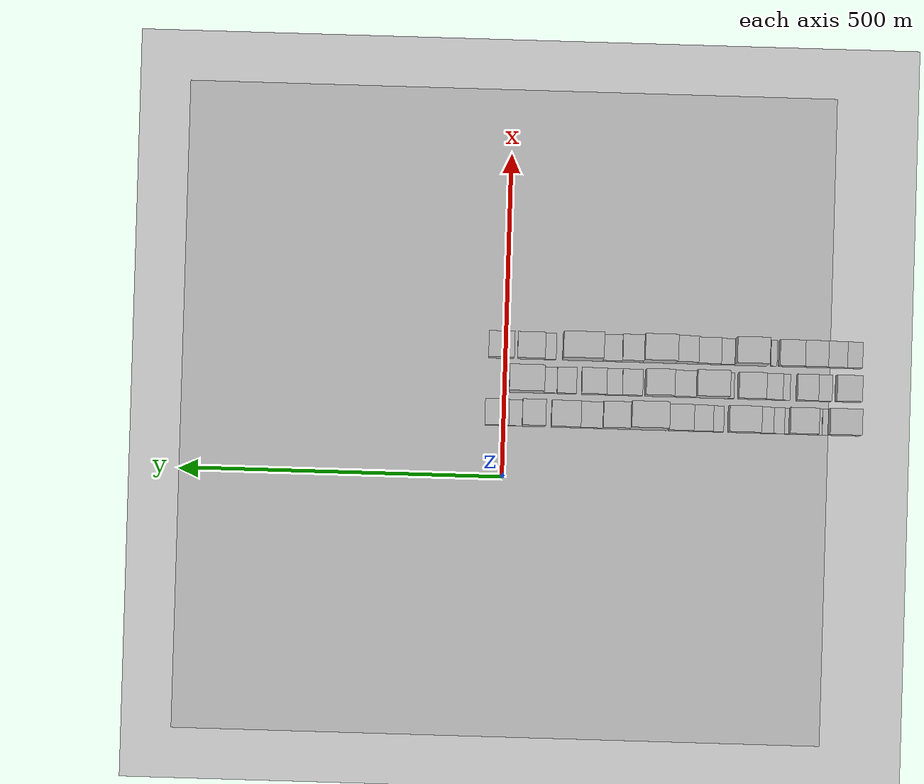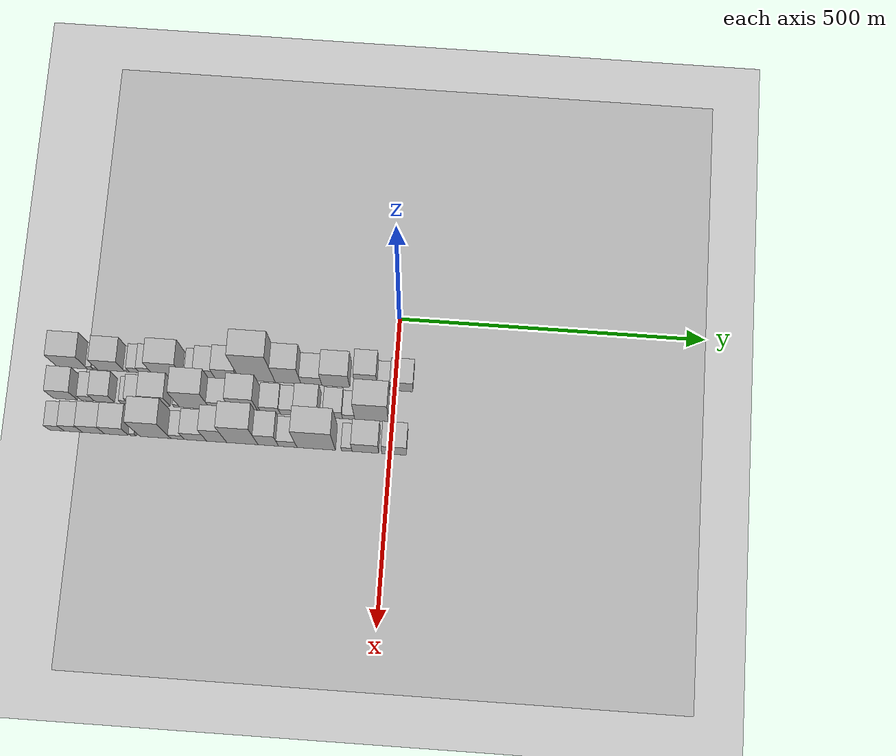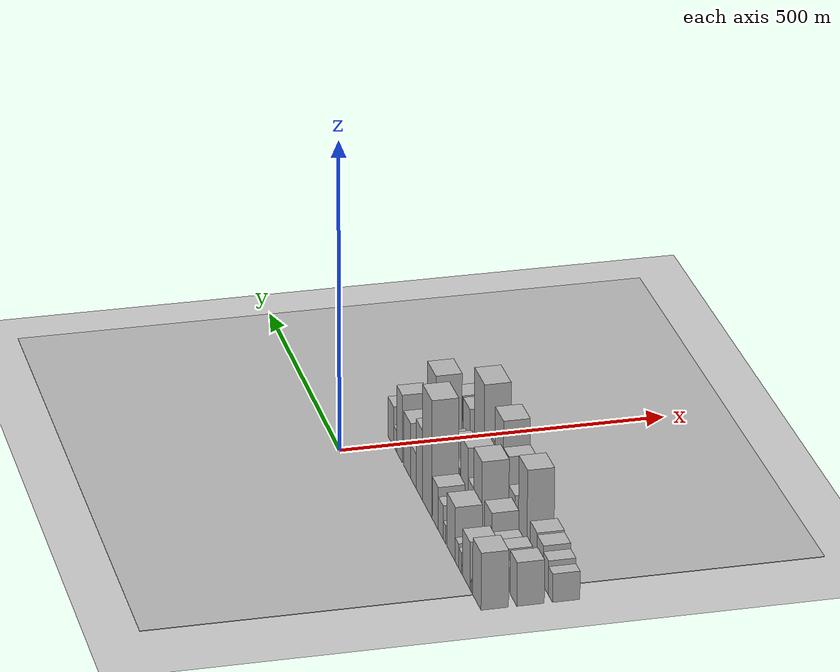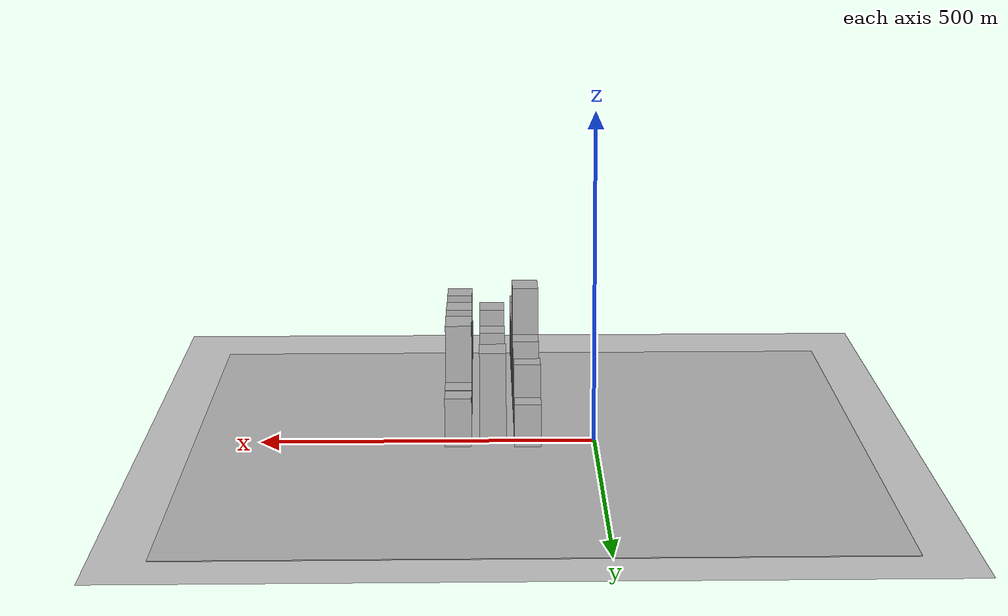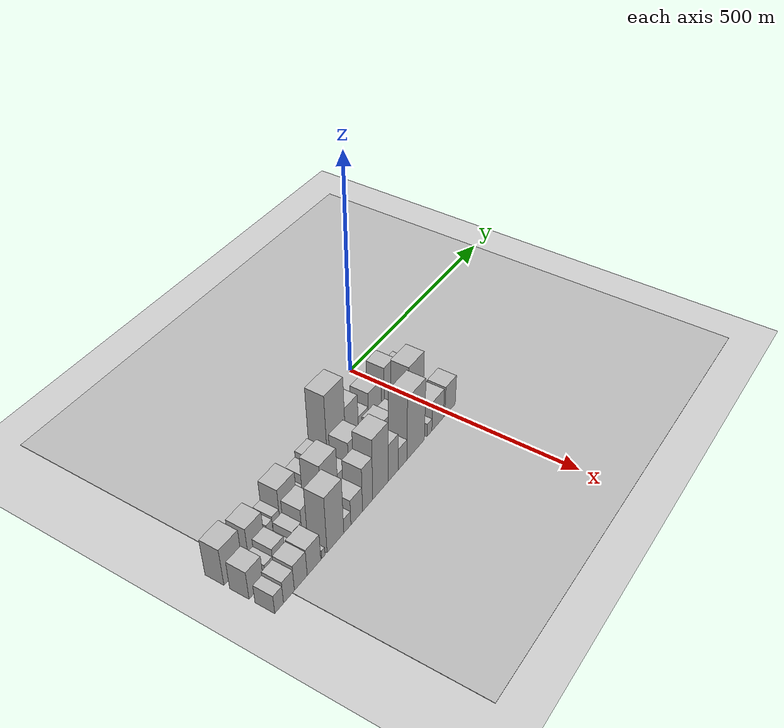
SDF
<sdf version="1.6">
 <world name="default">
  <include><name>ground_plane_1</name><uri>model://HANNAS_ground_plane</uri></include>
  <include>
   <name>ground_plane_2</name>
   <uri>model://HANNAS_ground_plane</uri>
   <pose>100 0 0  0 0 0</pose>
  </include>
  <model name="building_1">
   <static>1</static>
   <pose>100.0000 -523.3896 0 0.000000 0.000000 0.000000</pose>
   <link name="link">
    <pose>0 0 45.00 0 0 0</pose>
    <collision name="collision"><geometry><box><size>40.0000 49.2209 90.0000</size></box></geometry></collision>
    <visual name="visual">
     <cast_shadows>0</cast_shadows>
     <geometry><box><size>40.0000 49.2209 90.0000</size></box></geometry>
     <material>
      <script>
       <uri>model://HANNAS_wall/materials/scripts</uri>
       <uri>model://HANNAS_wall/materials/textures</uri>
       <name>vrc/HANNAS_wall</name>
      </script>
     </material>
    </visual>
   </link>
  </model>
  <model name="building_2">
   <static>1</static>
   <pose>100.0000 -494.3995 0 0.000000 0.000000 0.000000</pose>
   <link name="link">
    <pose>0 0 10.50 0 0 0</pose>
    <collision name="collision"><geometry><box><size>40.0000 8.7592 21.0000</size></box></geometry></collision>
    <visual name="visual">
     <cast_shadows>0</cast_shadows>
     <geometry><box><size>40.0000 8.7592 21.0000</size></box></geometry>
     <material>
      <script>
       <uri>model://HANNAS_wall/materials/scripts</uri>
       <uri>model://HANNAS_wall/materials/textures</uri>
       <name>vrc/HANNAS_wall</name>
      </script>
     </material>
    </visual>
   </link>
  </model>
  <model name="building_3">
   <static>1</static>
   <pose>100.0000 -486.4066 0 0.000000 0.000000 0.000000</pose>
   <link name="link">
    <pose>0 0 7.50 0 0 0</pose>
    <collision name="collision"><geometry><box><size>40.0000 7.2267 15.0000</size></box></geometry></collision>
    <visual name="visual">
     <cast_shadows>0</cast_shadows>
     <geometry><box><size>40.0000 7.2267 15.0000</size></box></geometry>
     <material>
      <script>
       <uri>model://HANNAS_wall/materials/scripts</uri>
       <uri>model://HANNAS_wall/materials/textures</uri>
       <name>vrc/HANNAS_wall</name>
      </script>
     </material>
    </visual>
   </link>
  </model>
  <model name="building_4">
   <static>1</static>
   <pose>100.0000 -460.7162 0 0.000000 0.000000 0.000000</pose>
   <link name="link">
    <pose>0 0 37.50 0 0 0</pose>
    <collision name="collision"><geometry><box><size>40.0000 44.1541 75.0000</size></box></geometry></collision>
    <visual name="visual">
     <cast_shadows>0</cast_shadows>
     <geometry><box><size>40.0000 44.1541 75.0000</size></box></geometry>
     <material>
      <script>
       <uri>model://HANNAS_wall/materials/scripts</uri>
       <uri>model://HANNAS_wall/materials/textures</uri>
       <name>vrc/HANNAS_wall</name>
      </script>
     </material>
    </visual>
   </link>
  </model>
  <model name="building_5">
   <static>1</static>
   <pose>100.0000 -434.9563 0 0.000000 0.000000 0.000000</pose>
   <link name="link">
    <pose>0 0 7.50 0 0 0</pose>
    <collision name="collision"><geometry><box><size>40.0000 7.3657 15.0000</size></box></geometry></collision>
    <visual name="visual">
     <cast_shadows>0</cast_shadows>
     <geometry><box><size>40.0000 7.3657 15.0000</size></box></geometry>
     <material>
      <script>
       <uri>model://HANNAS_wall/materials/scripts</uri>
       <uri>model://HANNAS_wall/materials/textures</uri>
       <name>vrc/HANNAS_wall</name>
      </script>
     </material>
    </visual>
   </link>
  </model>
  <model name="building_6">
   <static>1</static>
   <pose>100.0000 -422.9179 0 0.000000 0.000000 0.000000</pose>
   <link name="link">
    <pose>0 0 16.50 0 0 0</pose>
    <collision name="collision"><geometry><box><size>40.0000 16.7111 33.0000</size></box></geometry></collision>
    <visual name="visual">
     <cast_shadows>0</cast_shadows>
     <geometry><box><size>40.0000 16.7111 33.0000</size></box></geometry>
     <material>
      <script>
       <uri>model://HANNAS_wall/materials/scripts</uri>
       <uri>model://HANNAS_wall/materials/textures</uri>
       <name>vrc/HANNAS_wall</name>
      </script>
     </material>
    </visual>
   </link>
  </model>
  <model name="building_7">
   <static>1</static>
   <pose>100.0000 -404.4449 0 0.000000 0.000000 0.000000</pose>
   <link name="link">
    <pose>0 0 19.50 0 0 0</pose>
    <collision name="collision"><geometry><box><size>40.0000 20.2349 39.0000</size></box></geometry></collision>
    <visual name="visual">
     <cast_shadows>0</cast_shadows>
     <geometry><box><size>40.0000 20.2349 39.0000</size></box></geometry>
     <material>
      <script>
       <uri>model://HANNAS_wall/materials/scripts</uri>
       <uri>model://HANNAS_wall/materials/textures</uri>
       <name>vrc/HANNAS_wall</name>
      </script>
     </material>
    </visual>
   </link>
  </model>
  <model name="building_8">
   <static>1</static>
   <pose>100.0000 -369.5859 0 0.000000 0.000000 0.000000</pose>
   <link name="link">
    <pose>0 0 43.50 0 0 0</pose>
    <collision name="collision"><geometry><box><size>40.0000 49.4830 87.0000</size></box></geometry></collision>
    <visual name="visual">
     <cast_shadows>0</cast_shadows>
     <geometry><box><size>40.0000 49.4830 87.0000</size></box></geometry>
     <material>
      <script>
       <uri>model://HANNAS_wall/materials/scripts</uri>
       <uri>model://HANNAS_wall/materials/textures</uri>
       <name>vrc/HANNAS_wall</name>
      </script>
     </material>
    </visual>
   </link>
  </model>
  <model name="building_9">
   <static>1</static>
   <pose>100.0000 -329.4801 0 0.000000 0.000000 0.000000</pose>
   <link name="link">
    <pose>0 0 15.00 0 0 0</pose>
    <collision name="collision"><geometry><box><size>40.0000 16.7286 30.0000</size></box></geometry></collision>
    <visual name="visual">
     <cast_shadows>0</cast_shadows>
     <geometry><box><size>40.0000 16.7286 30.0000</size></box></geometry>
     <material>
      <script>
       <uri>model://HANNAS_wall/materials/scripts</uri>
       <uri>model://HANNAS_wall/materials/textures</uri>
       <name>vrc/HANNAS_wall</name>
      </script>
     </material>
    </visual>
   </link>
  </model>
  <model name="building_10">
   <static>1</static>
   <pose>100.0000 -306.1747 0 0.000000 0.000000 0.000000</pose>
   <link name="link">
    <pose>0 0 27.00 0 0 0</pose>
    <collision name="collision"><geometry><box><size>40.0000 29.8823 54.0000</size></box></geometry></collision>
    <visual name="visual">
     <cast_shadows>0</cast_shadows>
     <geometry><box><size>40.0000 29.8823 54.0000</size></box></geometry>
     <material>
      <script>
       <uri>model://HANNAS_wall/materials/scripts</uri>
       <uri>model://HANNAS_wall/materials/textures</uri>
       <name>vrc/HANNAS_wall</name>
      </script>
     </material>
    </visual>
   </link>
  </model>
  <model name="building_11">
   <static>1</static>
   <pose>100.0000 -272.3612 0 0.000000 0.000000 0.000000</pose>
   <link name="link">
    <pose>0 0 34.50 0 0 0</pose>
    <collision name="collision"><geometry><box><size>40.0000 37.7446 69.0000</size></box></geometry></collision>
    <visual name="visual">
     <cast_shadows>0</cast_shadows>
     <geometry><box><size>40.0000 37.7446 69.0000</size></box></geometry>
     <material>
      <script>
       <uri>model://HANNAS_wall/materials/scripts</uri>
       <uri>model://HANNAS_wall/materials/textures</uri>
       <name>vrc/HANNAS_wall</name>
      </script>
     </material>
    </visual>
   </link>
  </model>
  <model name="building_12">
   <static>1</static>
   <pose>100.0000 -221.8321 0 0.000000 0.000000 0.000000</pose>
   <link name="link">
    <pose>0 0 94.50 0 0 0</pose>
    <collision name="collision"><geometry><box><size>40.0000 57.3137 189.0000</size></box></geometry></collision>
    <visual name="visual">
     <cast_shadows>0</cast_shadows>
     <geometry><box><size>40.0000 57.3137 189.0000</size></box></geometry>
     <material>
      <script>
       <uri>model://HANNAS_wall/materials/scripts</uri>
       <uri>model://HANNAS_wall/materials/textures</uri>
       <name>vrc/HANNAS_wall</name>
      </script>
     </material>
    </visual>
   </link>
  </model>
  <model name="building_13">
   <static>1</static>
   <pose>100.0000 -172.2524 0 0.000000 0.000000 0.000000</pose>
   <link name="link">
    <pose>0 0 57.00 0 0 0</pose>
    <collision name="collision"><geometry><box><size>40.0000 41.8458 114.0000</size></box></geometry></collision>
    <visual name="visual">
     <cast_shadows>0</cast_shadows>
     <geometry><box><size>40.0000 41.8458 114.0000</size></box></geometry>
     <material>
      <script>
       <uri>model://HANNAS_wall/materials/scripts</uri>
       <uri>model://HANNAS_wall/materials/textures</uri>
       <name>vrc/HANNAS_wall</name>
      </script>
     </material>
    </visual>
   </link>
  </model>
  <model name="building_14">
   <static>1</static>
   <pose>100.0000 -134.3879 0 0.000000 0.000000 0.000000</pose>
   <link name="link">
    <pose>0 0 28.50 0 0 0</pose>
    <collision name="collision"><geometry><box><size>40.0000 33.8833 57.0000</size></box></geometry></collision>
    <visual name="visual">
     <cast_shadows>0</cast_shadows>
     <geometry><box><size>40.0000 33.8833 57.0000</size></box></geometry>
     <material>
      <script>
       <uri>model://HANNAS_wall/materials/scripts</uri>
       <uri>model://HANNAS_wall/materials/textures</uri>
       <name>vrc/HANNAS_wall</name>
      </script>
     </material>
    </visual>
   </link>
  </model>
  <model name="building_15">
   <static>1</static>
   <pose>100.0000 -94.8387 0 0.000000 0.000000 0.000000</pose>
   <link name="link">
    <pose>0 0 45.00 0 0 0</pose>
    <collision name="collision"><geometry><box><size>40.0000 45.2150 90.0000</size></box></geometry></collision>
    <visual name="visual">
     <cast_shadows>0</cast_shadows>
     <geometry><box><size>40.0000 45.2150 90.0000</size></box></geometry>
     <material>
      <script>
       <uri>model://HANNAS_wall/materials/scripts</uri>
       <uri>model://HANNAS_wall/materials/textures</uri>
       <name>vrc/HANNAS_wall</name>
      </script>
     </material>
    </visual>
   </link>
  </model>
  <model name="building_16">
   <static>1</static>
   <pose>100.0000 -45.3089 0 0.000000 0.000000 0.000000</pose>
   <link name="link">
    <pose>0 0 55.50 0 0 0</pose>
    <collision name="collision"><geometry><box><size>40.0000 35.8447 111.0000</size></box></geometry></collision>
    <visual name="visual">
     <cast_shadows>0</cast_shadows>
     <geometry><box><size>40.0000 35.8447 111.0000</size></box></geometry>
     <material>
      <script>
       <uri>model://HANNAS_wall/materials/scripts</uri>
       <uri>model://HANNAS_wall/materials/textures</uri>
       <name>vrc/HANNAS_wall</name>
      </script>
     </material>
    </visual>
   </link>
  </model>
  <model name="building_17">
   <static>1</static>
   <pose>100.0000 -17.1245 0 0.000000 0.000000 0.000000</pose>
   <link name="link">
    <pose>0 0 18.00 0 0 0</pose>
    <collision name="collision"><geometry><box><size>40.0000 20.5241 36.0000</size></box></geometry></collision>
    <visual name="visual">
     <cast_shadows>0</cast_shadows>
     <geometry><box><size>40.0000 20.5241 36.0000</size></box></geometry>
     <material>
      <script>
       <uri>model://HANNAS_wall/materials/scripts</uri>
       <uri>model://HANNAS_wall/materials/textures</uri>
       <name>vrc/HANNAS_wall</name>
      </script>
     </material>
    </visual>
   </link>
  </model>
  <model name="building_18">
   <static>1</static>
   <pose>100.0000 11.6222 0 0.000000 0.000000 0.000000</pose>
   <link name="link">
    <pose>0 0 33.00 0 0 0</pose>
    <collision name="collision"><geometry><box><size>40.0000 36.9693 66.0000</size></box></geometry></collision>
    <visual name="visual">
     <cast_shadows>0</cast_shadows>
     <geometry><box><size>40.0000 36.9693 66.0000</size></box></geometry>
     <material>
      <script>
       <uri>model://HANNAS_wall/materials/scripts</uri>
       <uri>model://HANNAS_wall/materials/textures</uri>
       <name>vrc/HANNAS_wall</name>
      </script>
     </material>
    </visual>
   </link>
  </model>
  <model name="building_36">
   <static>1</static>
   <pose>152.0000 -528.5229 0 0.000000 0.000000 0.000000</pose>
   <link name="link">
    <pose>0 0 34.50 0 0 0</pose>
    <collision name="collision"><geometry><box><size>40.0000 38.9542 69.0000</size></box></geometry></collision>
    <visual name="visual">
     <cast_shadows>0</cast_shadows>
     <geometry><box><size>40.0000 38.9542 69.0000</size></box></geometry>
     <material>
      <script>
       <uri>model://HANNAS_wall/materials/scripts</uri>
       <uri>model://HANNAS_wall/materials/textures</uri>
       <name>vrc/HANNAS_wall</name>
      </script>
     </material>
    </visual>
   </link>
  </model>
  <model name="building_37">
   <static>1</static>
   <pose>152.0000 -492.2484 0 0.000000 0.000000 0.000000</pose>
   <link name="link">
    <pose>0 0 19.50 0 0 0</pose>
    <collision name="collision"><geometry><box><size>40.0000 21.5948 39.0000</size></box></geometry></collision>
    <visual name="visual">
     <cast_shadows>0</cast_shadows>
     <geometry><box><size>40.0000 21.5948 39.0000</size></box></geometry>
     <material>
      <script>
       <uri>model://HANNAS_wall/materials/scripts</uri>
       <uri>model://HANNAS_wall/materials/textures</uri>
       <name>vrc/HANNAS_wall</name>
      </script>
     </material>
    </visual>
   </link>
  </model>
  <model name="building_38">
   <static>1</static>
   <pose>152.0000 -465.1450 0 0.000000 0.000000 0.000000</pose>
   <link name="link">
    <pose>0 0 28.50 0 0 0</pose>
    <collision name="collision"><geometry><box><size>40.0000 32.6120 57.0000</size></box></geometry></collision>
    <visual name="visual">
     <cast_shadows>0</cast_shadows>
     <geometry><box><size>40.0000 32.6120 57.0000</size></box></geometry>
     <material>
      <script>
       <uri>model://HANNAS_wall/materials/scripts</uri>
       <uri>model://HANNAS_wall/materials/textures</uri>
       <name>vrc/HANNAS_wall</name>
      </script>
     </material>
    </visual>
   </link>
  </model>
  <model name="building_39">
   <static>1</static>
   <pose>152.0000 -433.0140 0 0.000000 0.000000 0.000000</pose>
   <link name="link">
    <pose>0 0 12.00 0 0 0</pose>
    <collision name="collision"><geometry><box><size>40.0000 11.6500 24.0000</size></box></geometry></collision>
    <visual name="visual">
     <cast_shadows>0</cast_shadows>
     <geometry><box><size>40.0000 11.6500 24.0000</size></box></geometry>
     <material>
      <script>
       <uri>model://HANNAS_wall/materials/scripts</uri>
       <uri>model://HANNAS_wall/materials/textures</uri>
       <name>vrc/HANNAS_wall</name>
      </script>
     </material>
    </visual>
   </link>
  </model>
  <model name="building_40">
   <static>1</static>
   <pose>152.0000 -414.0370 0 0.000000 0.000000 0.000000</pose>
   <link name="link">
    <pose>0 0 22.50 0 0 0</pose>
    <collision name="collision"><geometry><box><size>40.0000 26.3038 45.0000</size></box></geometry></collision>
    <visual name="visual">
     <cast_shadows>0</cast_shadows>
     <geometry><box><size>40.0000 26.3038 45.0000</size></box></geometry>
     <material>
      <script>
       <uri>model://HANNAS_wall/materials/scripts</uri>
       <uri>model://HANNAS_wall/materials/textures</uri>
       <name>vrc/HANNAS_wall</name>
      </script>
     </material>
    </visual>
   </link>
  </model>
  <model name="building_41">
   <static>1</static>
   <pose>152.0000 -379.6991 0 0.000000 0.000000 0.000000</pose>
   <link name="link">
    <pose>0 0 37.50 0 0 0</pose>
    <collision name="collision"><geometry><box><size>40.0000 42.3722 75.0000</size></box></geometry></collision>
    <visual name="visual">
     <cast_shadows>0</cast_shadows>
     <geometry><box><size>40.0000 42.3722 75.0000</size></box></geometry>
     <material>
      <script>
       <uri>model://HANNAS_wall/materials/scripts</uri>
       <uri>model://HANNAS_wall/materials/textures</uri>
       <name>vrc/HANNAS_wall</name>
      </script>
     </material>
    </visual>
   </link>
  </model>
  <model name="building_42">
   <static>1</static>
   <pose>152.0000 -347.8365 0 0.000000 0.000000 0.000000</pose>
   <link name="link">
    <pose>0 0 10.50 0 0 0</pose>
    <collision name="collision"><geometry><box><size>40.0000 9.3531 21.0000</size></box></geometry></collision>
    <visual name="visual">
     <cast_shadows>0</cast_shadows>
     <geometry><box><size>40.0000 9.3531 21.0000</size></box></geometry>
     <material>
      <script>
       <uri>model://HANNAS_wall/materials/scripts</uri>
       <uri>model://HANNAS_wall/materials/textures</uri>
       <name>vrc/HANNAS_wall</name>
      </script>
     </material>
    </visual>
   </link>
  </model>
  <model name="building_43">
   <static>1</static>
   <pose>152.0000 -318.1332 0 0.000000 0.000000 0.000000</pose>
   <link name="link">
    <pose>0 0 64.50 0 0 0</pose>
    <collision name="collision"><geometry><box><size>40.0000 50.0534 129.0000</size></box></geometry></collision>
    <visual name="visual">
     <cast_shadows>0</cast_shadows>
     <geometry><box><size>40.0000 50.0534 129.0000</size></box></geometry>
     <material>
      <script>
       <uri>model://HANNAS_wall/materials/scripts</uri>
       <uri>model://HANNAS_wall/materials/textures</uri>
       <name>vrc/HANNAS_wall</name>
      </script>
     </material>
    </visual>
   </link>
  </model>
  <model name="building_44">
   <static>1</static>
   <pose>152.0000 -276.0506 0 0.000000 0.000000 0.000000</pose>
   <link name="link">
    <pose>0 0 31.50 0 0 0</pose>
    <collision name="collision"><geometry><box><size>40.0000 34.1118 63.0000</size></box></geometry></collision>
    <visual name="visual">
     <cast_shadows>0</cast_shadows>
     <geometry><box><size>40.0000 34.1118 63.0000</size></box></geometry>
     <material>
      <script>
       <uri>model://HANNAS_wall/materials/scripts</uri>
       <uri>model://HANNAS_wall/materials/textures</uri>
       <name>vrc/HANNAS_wall</name>
      </script>
     </material>
    </visual>
   </link>
  </model>
  <model name="building_45">
   <static>1</static>
   <pose>152.0000 -237.1053 0 0.000000 0.000000 0.000000</pose>
   <link name="link">
    <pose>0 0 55.50 0 0 0</pose>
    <collision name="collision"><geometry><box><size>40.0000 43.7787 111.0000</size></box></geometry></collision>
    <visual name="visual">
     <cast_shadows>0</cast_shadows>
     <geometry><box><size>40.0000 43.7787 111.0000</size></box></geometry>
     <material>
      <script>
       <uri>model://HANNAS_wall/materials/scripts</uri>
       <uri>model://HANNAS_wall/materials/textures</uri>
       <name>vrc/HANNAS_wall</name>
      </script>
     </material>
    </visual>
   </link>
  </model>
  <model name="building_46">
   <static>1</static>
   <pose>152.0000 -195.6195 0 0.000000 0.000000 0.000000</pose>
   <link name="link">
    <pose>0 0 27.00 0 0 0</pose>
    <collision name="collision"><geometry><box><size>40.0000 31.1930 54.0000</size></box></geometry></collision>
    <visual name="visual">
     <cast_shadows>0</cast_shadows>
     <geometry><box><size>40.0000 31.1930 54.0000</size></box></geometry>
     <material>
      <script>
       <uri>model://HANNAS_wall/materials/scripts</uri>
       <uri>model://HANNAS_wall/materials/textures</uri>
       <name>vrc/HANNAS_wall</name>
      </script>
     </material>
    </visual>
   </link>
  </model>
  <model name="building_47">
   <static>1</static>
   <pose>152.0000 -167.8208 0 0.000000 0.000000 0.000000</pose>
   <link name="link">
    <pose>0 0 22.50 0 0 0</pose>
    <collision name="collision"><geometry><box><size>40.0000 24.4042 45.0000</size></box></geometry></collision>
    <visual name="visual">
     <cast_shadows>0</cast_shadows>
     <geometry><box><size>40.0000 24.4042 45.0000</size></box></geometry>
     <material>
      <script>
       <uri>model://HANNAS_wall/materials/scripts</uri>
       <uri>model://HANNAS_wall/materials/textures</uri>
       <name>vrc/HANNAS_wall</name>
      </script>
     </material>
    </visual>
   </link>
  </model>
  <model name="building_48">
   <static>1</static>
   <pose>152.0000 -136.5145 0 0.000000 0.000000 0.000000</pose>
   <link name="link">
    <pose>0 0 34.50 0 0 0</pose>
    <collision name="collision"><geometry><box><size>40.0000 38.2084 69.0000</size></box></geometry></collision>
    <visual name="visual">
     <cast_shadows>0</cast_shadows>
     <geometry><box><size>40.0000 38.2084 69.0000</size></box></geometry>
     <material>
      <script>
       <uri>model://HANNAS_wall/materials/scripts</uri>
       <uri>model://HANNAS_wall/materials/textures</uri>
       <name>vrc/HANNAS_wall</name>
      </script>
     </material>
    </visual>
   </link>
  </model>
  <model name="building_49">
   <static>1</static>
   <pose>152.0000 -94.4691 0 0.000000 0.000000 0.000000</pose>
   <link name="link">
    <pose>0 0 27.00 0 0 0</pose>
    <collision name="collision"><geometry><box><size>40.0000 29.8825 54.0000</size></box></geometry></collision>
    <visual name="visual">
     <cast_shadows>0</cast_shadows>
     <geometry><box><size>40.0000 29.8825 54.0000</size></box></geometry>
     <material>
      <script>
       <uri>model://HANNAS_wall/materials/scripts</uri>
       <uri>model://HANNAS_wall/materials/textures</uri>
       <name>vrc/HANNAS_wall</name>
      </script>
     </material>
    </visual>
   </link>
  </model>
  <model name="building_50">
   <static>1</static>
   <pose>152.0000 -69.6777 0 0.000000 0.000000 0.000000</pose>
   <link name="link">
    <pose>0 0 18.00 0 0 0</pose>
    <collision name="collision"><geometry><box><size>40.0000 19.7003 36.0000</size></box></geometry></collision>
    <visual name="visual">
     <cast_shadows>0</cast_shadows>
     <geometry><box><size>40.0000 19.7003 36.0000</size></box></geometry>
     <material>
      <script>
       <uri>model://HANNAS_wall/materials/scripts</uri>
       <uri>model://HANNAS_wall/materials/textures</uri>
       <name>vrc/HANNAS_wall</name>
      </script>
     </material>
    </visual>
   </link>
  </model>
  <model name="building_51">
   <static>1</static>
   <pose>152.0000 -32.9477 0 0.000000 0.000000 0.000000</pose>
   <link name="link">
    <pose>0 0 67.50 0 0 0</pose>
    <collision name="collision"><geometry><box><size>40.0000 53.7598 135.0000</size></box></geometry></collision>
    <visual name="visual">
     <cast_shadows>0</cast_shadows>
     <geometry><box><size>40.0000 53.7598 135.0000</size></box></geometry>
     <material>
      <script>
       <uri>model://HANNAS_wall/materials/scripts</uri>
       <uri>model://HANNAS_wall/materials/textures</uri>
       <name>vrc/HANNAS_wall</name>
      </script>
     </material>
    </visual>
   </link>
  </model>
  <model name="building_70">
   <static>1</static>
   <pose>204.0000 -536.1994 0 0.000000 0.000000 0.000000</pose>
   <link name="link">
    <pose>0 0 22.50 0 0 0</pose>
    <collision name="collision"><geometry><box><size>40.0000 23.6012 45.0000</size></box></geometry></collision>
    <visual name="visual">
     <cast_shadows>0</cast_shadows>
     <geometry><box><size>40.0000 23.6012 45.0000</size></box></geometry>
     <material>
      <script>
       <uri>model://HANNAS_wall/materials/scripts</uri>
       <uri>model://HANNAS_wall/materials/textures</uri>
       <name>vrc/HANNAS_wall</name>
      </script>
     </material>
    </visual>
   </link>
  </model>
  <model name="building_71">
   <static>1</static>
   <pose>204.0000 -509.6062 0 0.000000 0.000000 0.000000</pose>
   <link name="link">
    <pose>0 0 27.00 0 0 0</pose>
    <collision name="collision"><geometry><box><size>40.0000 29.5853 54.0000</size></box></geometry></collision>
    <visual name="visual">
     <cast_shadows>0</cast_shadows>
     <geometry><box><size>40.0000 29.5853 54.0000</size></box></geometry>
     <material>
      <script>
       <uri>model://HANNAS_wall/materials/scripts</uri>
       <uri>model://HANNAS_wall/materials/textures</uri>
       <name>vrc/HANNAS_wall</name>
      </script>
     </material>
    </visual>
   </link>
  </model>
  <model name="building_72">
   <static>1</static>
   <pose>204.0000 -476.9647 0 0.000000 0.000000 0.000000</pose>
   <link name="link">
    <pose>0 0 31.50 0 0 0</pose>
    <collision name="collision"><geometry><box><size>40.0000 35.6978 63.0000</size></box></geometry></collision>
    <visual name="visual">
     <cast_shadows>0</cast_shadows>
     <geometry><box><size>40.0000 35.6978 63.0000</size></box></geometry>
     <material>
      <script>
       <uri>model://HANNAS_wall/materials/scripts</uri>
       <uri>model://HANNAS_wall/materials/textures</uri>
       <name>vrc/HANNAS_wall</name>
      </script>
     </material>
    </visual>
   </link>
  </model>
  <model name="building_73">
   <static>1</static>
   <pose>204.0000 -439.7143 0 0.000000 0.000000 0.000000</pose>
   <link name="link">
    <pose>0 0 33.00 0 0 0</pose>
    <collision name="collision"><geometry><box><size>40.0000 38.8030 66.0000</size></box></geometry></collision>
    <visual name="visual">
     <cast_shadows>0</cast_shadows>
     <geometry><box><size>40.0000 38.8030 66.0000</size></box></geometry>
     <material>
      <script>
       <uri>model://HANNAS_wall/materials/scripts</uri>
       <uri>model://HANNAS_wall/materials/textures</uri>
       <name>vrc/HANNAS_wall</name>
      </script>
     </material>
    </visual>
   </link>
  </model>
  <model name="building_74">
   <static>1</static>
   <pose>204.0000 -412.6067 0 0.000000 0.000000 0.000000</pose>
   <link name="link">
    <pose>0 0 10.50 0 0 0</pose>
    <collision name="collision"><geometry><box><size>40.0000 9.4121 21.0000</size></box></geometry></collision>
    <visual name="visual">
     <cast_shadows>0</cast_shadows>
     <geometry><box><size>40.0000 9.4121 21.0000</size></box></geometry>
     <material>
      <script>
       <uri>model://HANNAS_wall/materials/scripts</uri>
       <uri>model://HANNAS_wall/materials/textures</uri>
       <name>vrc/HANNAS_wall</name>
      </script>
     </material>
    </visual>
   </link>
  </model>
  <model name="building_75">
   <static>1</static>
   <pose>204.0000 -376.9694 0 0.000000 0.000000 0.000000</pose>
   <link name="link">
    <pose>0 0 69.00 0 0 0</pose>
    <collision name="collision"><geometry><box><size>40.0000 49.8626 138.0000</size></box></geometry></collision>
    <visual name="visual">
     <cast_shadows>0</cast_shadows>
     <geometry><box><size>40.0000 49.8626 138.0000</size></box></geometry>
     <material>
      <script>
       <uri>model://HANNAS_wall/materials/scripts</uri>
       <uri>model://HANNAS_wall/materials/textures</uri>
       <name>vrc/HANNAS_wall</name>
      </script>
     </material>
    </visual>
   </link>
  </model>
  <model name="building_76">
   <static>1</static>
   <pose>204.0000 -341.2982 0 0.000000 0.000000 0.000000</pose>
   <link name="link">
    <pose>0 0 18.00 0 0 0</pose>
    <collision name="collision"><geometry><box><size>40.0000 21.4798 36.0000</size></box></geometry></collision>
    <visual name="visual">
     <cast_shadows>0</cast_shadows>
     <geometry><box><size>40.0000 21.4798 36.0000</size></box></geometry>
     <material>
      <script>
       <uri>model://HANNAS_wall/materials/scripts</uri>
       <uri>model://HANNAS_wall/materials/textures</uri>
       <name>vrc/HANNAS_wall</name>
      </script>
     </material>
    </visual>
   </link>
  </model>
  <model name="building_77">
   <static>1</static>
   <pose>204.0000 -312.4391 0 0.000000 0.000000 0.000000</pose>
   <link name="link">
    <pose>0 0 31.50 0 0 0</pose>
    <collision name="collision"><geometry><box><size>40.0000 36.2383 63.0000</size></box></geometry></collision>
    <visual name="visual">
     <cast_shadows>0</cast_shadows>
     <geometry><box><size>40.0000 36.2383 63.0000</size></box></geometry>
     <material>
      <script>
       <uri>model://HANNAS_wall/materials/scripts</uri>
       <uri>model://HANNAS_wall/materials/textures</uri>
       <name>vrc/HANNAS_wall</name>
      </script>
     </material>
    </visual>
   </link>
  </model>
  <model name="building_78">
   <static>1</static>
   <pose>204.0000 -278.1028 0 0.000000 0.000000 0.000000</pose>
   <link name="link">
    <pose>0 0 54.00 0 0 0</pose>
    <collision name="collision"><geometry><box><size>40.0000 32.4343 108.0000</size></box></geometry></collision>
    <visual name="visual">
     <cast_shadows>0</cast_shadows>
     <geometry><box><size>40.0000 32.4343 108.0000</size></box></geometry>
     <material>
      <script>
       <uri>model://HANNAS_wall/materials/scripts</uri>
       <uri>model://HANNAS_wall/materials/textures</uri>
       <name>vrc/HANNAS_wall</name>
      </script>
     </material>
    </visual>
   </link>
  </model>
  <model name="building_79">
   <static>1</static>
   <pose>204.0000 -236.6239 0 0.000000 0.000000 0.000000</pose>
   <link name="link">
    <pose>0 0 75.00 0 0 0</pose>
    <collision name="collision"><geometry><box><size>40.0000 50.5235 150.0000</size></box></geometry></collision>
    <visual name="visual">
     <cast_shadows>0</cast_shadows>
     <geometry><box><size>40.0000 50.5235 150.0000</size></box></geometry>
     <material>
      <script>
       <uri>model://HANNAS_wall/materials/scripts</uri>
       <uri>model://HANNAS_wall/materials/textures</uri>
       <name>vrc/HANNAS_wall</name>
      </script>
     </material>
    </visual>
   </link>
  </model>
  <model name="building_80">
   <static>1</static>
   <pose>204.0000 -194.9050 0 0.000000 0.000000 0.000000</pose>
   <link name="link">
    <pose>0 0 46.50 0 0 0</pose>
    <collision name="collision"><geometry><box><size>40.0000 32.9144 93.0000</size></box></geometry></collision>
    <visual name="visual">
     <cast_shadows>0</cast_shadows>
     <geometry><box><size>40.0000 32.9144 93.0000</size></box></geometry>
     <material>
      <script>
       <uri>model://HANNAS_wall/materials/scripts</uri>
       <uri>model://HANNAS_wall/materials/textures</uri>
       <name>vrc/HANNAS_wall</name>
      </script>
     </material>
    </visual>
   </link>
  </model>
  <model name="building_81">
   <static>1</static>
   <pose>204.0000 -163.5365 0 0.000000 0.000000 0.000000</pose>
   <link name="link">
    <pose>0 0 27.00 0 0 0</pose>
    <collision name="collision"><geometry><box><size>40.0000 29.8226 54.0000</size></box></geometry></collision>
    <visual name="visual">
     <cast_shadows>0</cast_shadows>
     <geometry><box><size>40.0000 29.8226 54.0000</size></box></geometry>
     <material>
      <script>
       <uri>model://HANNAS_wall/materials/scripts</uri>
       <uri>model://HANNAS_wall/materials/textures</uri>
       <name>vrc/HANNAS_wall</name>
      </script>
     </material>
    </visual>
   </link>
  </model>
  <model name="building_82">
   <static>1</static>
   <pose>204.0000 -117.7614 0 0.000000 0.000000 0.000000</pose>
   <link name="link">
    <pose>0 0 78.00 0 0 0</pose>
    <collision name="collision"><geometry><box><size>40.0000 61.7275 156.0000</size></box></geometry></collision>
    <visual name="visual">
     <cast_shadows>0</cast_shadows>
     <geometry><box><size>40.0000 61.7275 156.0000</size></box></geometry>
     <material>
      <script>
       <uri>model://HANNAS_wall/materials/scripts</uri>
       <uri>model://HANNAS_wall/materials/textures</uri>
       <name>vrc/HANNAS_wall</name>
      </script>
     </material>
    </visual>
   </link>
  </model>
  <model name="building_83">
   <static>1</static>
   <pose>204.0000 -68.3918 0 0.000000 0.000000 0.000000</pose>
   <link name="link">
    <pose>0 0 16.50 0 0 0</pose>
    <collision name="collision"><geometry><box><size>40.0000 17.0117 33.0000</size></box></geometry></collision>
    <visual name="visual">
     <cast_shadows>0</cast_shadows>
     <geometry><box><size>40.0000 17.0117 33.0000</size></box></geometry>
     <material>
      <script>
       <uri>model://HANNAS_wall/materials/scripts</uri>
       <uri>model://HANNAS_wall/materials/textures</uri>
       <name>vrc/HANNAS_wall</name>
      </script>
     </material>
    </visual>
   </link>
  </model>
  <model name="building_84">
   <static>1</static>
   <pose>204.0000 -38.6479 0 0.000000 0.000000 0.000000</pose>
   <link name="link">
    <pose>0 0 37.50 0 0 0</pose>
    <collision name="collision"><geometry><box><size>40.0000 42.4760 75.0000</size></box></geometry></collision>
    <visual name="visual">
     <cast_shadows>0</cast_shadows>
     <geometry><box><size>40.0000 42.4760 75.0000</size></box></geometry>
     <material>
      <script>
       <uri>model://HANNAS_wall/materials/scripts</uri>
       <uri>model://HANNAS_wall/materials/textures</uri>
       <name>vrc/HANNAS_wall</name>
      </script>
     </material>
    </visual>
   </link>
  </model>
  <model name="building_85">
   <static>1</static>
   <pose>204.0000 7.3944 0 0.000000 0.000000 0.000000</pose>
   <link name="link">
    <pose>0 0 37.50 0 0 0</pose>
    <collision name="collision"><geometry><box><size>40.0000 39.6085 75.0000</size></box></geometry></collision>
    <visual name="visual">
     <cast_shadows>0</cast_shadows>
     <geometry><box><size>40.0000 39.6085 75.0000</size></box></geometry>
     <material>
      <script>
       <uri>model://HANNAS_wall/materials/scripts</uri>
       <uri>model://HANNAS_wall/materials/textures</uri>
       <name>vrc/HANNAS_wall</name>
      </script>
     </material>
    </visual>
   </link>
  </model>
 </world>
</sdf>
